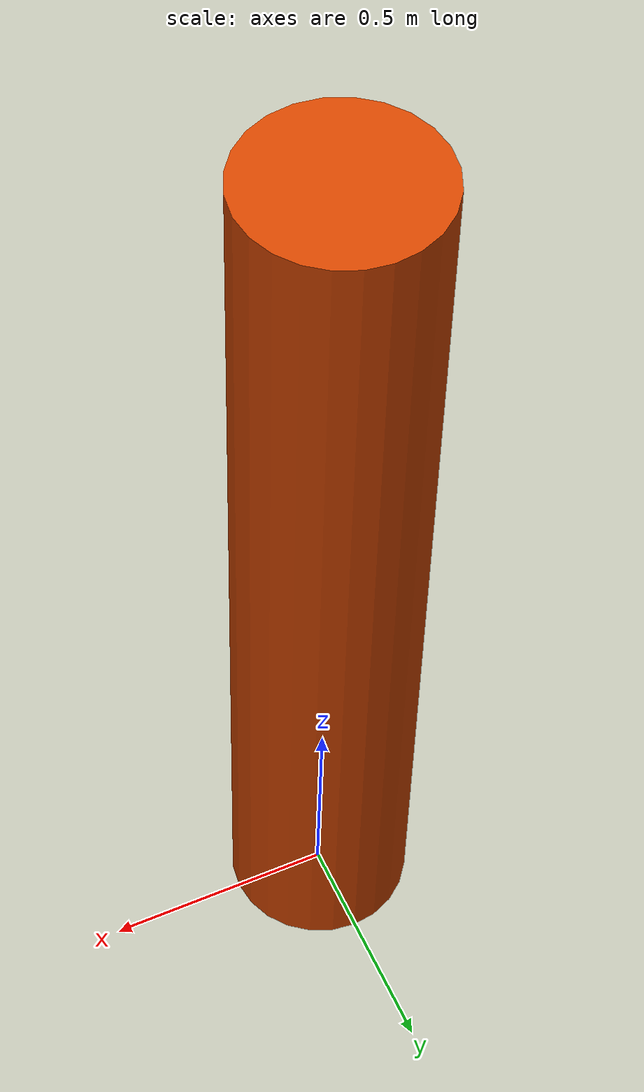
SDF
<?xml version='1.0'?>
<sdf version='1.4'>
  <model name="orange_pole">
    <static>true</static>
    <pose>0 0 0 0 0 0</pose>

    <link name="orange_pole">
      <pose>0 0 0 0 0 0</pose>
      <visual name="pole">
        <pose>0 0 1.1 0 0 0</pose>
        <geometry>
          <cylinder>
            <radius>0.2</radius>
            <length>2.2</length>
          </cylinder>
        </geometry>
        <material>
            <ambient>0.83 0.27 0 1</ambient>
            <diffuse>0.83 0.27 0 1</diffuse>
            <specular>0.83 0.27 0 0.64</specular>
            <emissive>0.83 0.27 0 1</emissive>
        </material>
      </visual>
      <collision name="pole_collision">
        <pose>0 0 1.1 0 0 0</pose>
        <geometry>
          <cylinder>
            <radius>0.2</radius>
            <length>2.2</length>
          </cylinder>
        </geometry>
      </collision>
    </link>

  </model>
</sdf>
